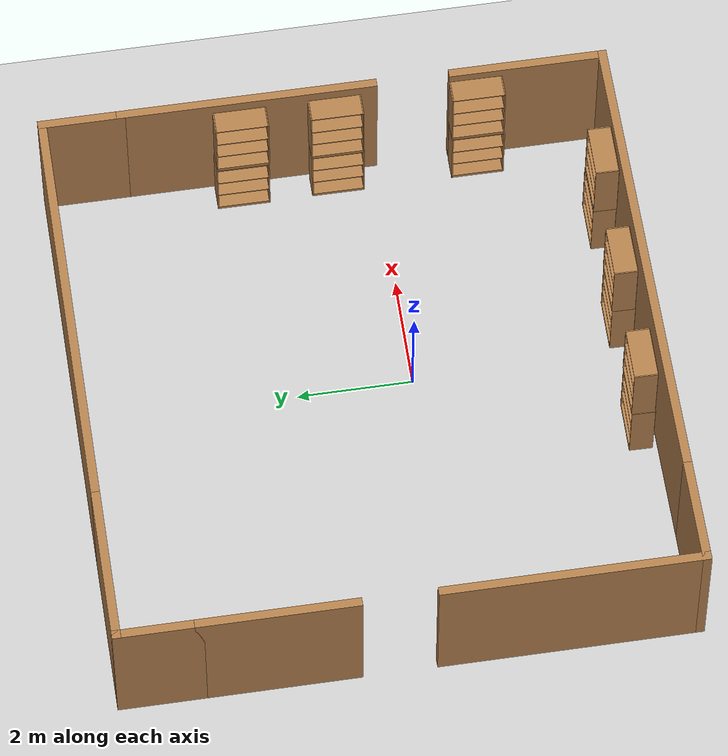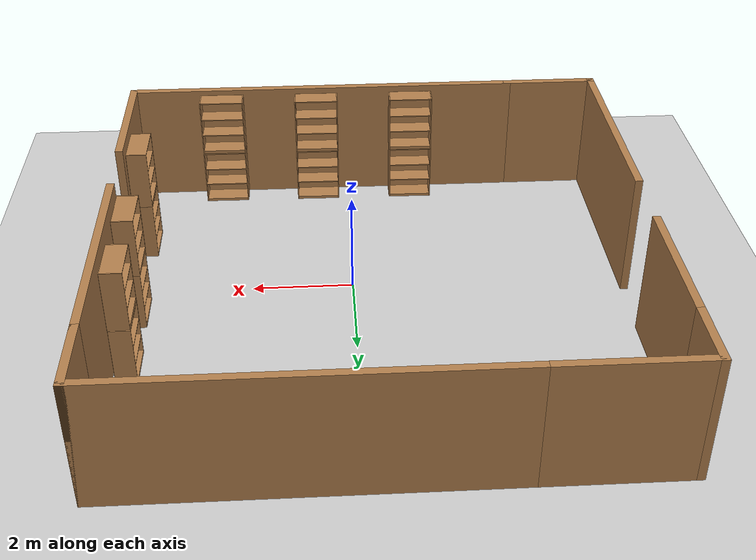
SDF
<sdf version="1.7">
 <world name="default">
  <model name="ground_plane">
   <static>1</static>
   <link name="link">
    <collision name="collision">
     <geometry><plane><normal>0 0 1</normal><size>100 100</size></plane></geometry>
     <surface><friction><ode><mu>100</mu><mu2>50</mu2></ode></friction></surface>
    </collision>
    <visual name="visual">
     <cast_shadows>0</cast_shadows>
     <geometry><plane><normal>0 0 1</normal><size>100 100</size></plane></geometry>
     <material>
      <script><uri>file://media/materials/scripts/gazebo.material</uri><name>Gazebo/Grey</name></script>
     </material>
    </visual>
   </link>
  </model>
  <model name="shopping_mart_box">
   <pose>-0.44063 0.87202 0 0 -0 0</pose>
   <link name="Wall_11">
    <collision name="Wall_11_Collision">
     <geometry><box><size>2 0.15 2.5</size></box></geometry>
     <pose>0 0 1.25 0 -0 0</pose>
    </collision>
    <visual name="Wall_11_Visual">
     <pose>0 0 1.25 0 -0 0</pose>
     <geometry><box><size>2 0.15 2.5</size></box></geometry>
     <material>
      <script><uri>file://media/materials/scripts/gazebo.material</uri><name>Gazebo/Wood</name></script>
      <ambient>1 1 1 1</ambient>
     </material>
    </visual>
    <pose>-4.05 -4.85 0 0 -0 3.14159</pose>
   </link>
   <link name="Wall_12">
    <collision name="Wall_12_Collision">
     <geometry><box><size>4.5 0.15 2.5</size></box></geometry>
     <pose>0 0 1.25 0 -0 0</pose>
    </collision>
    <visual name="Wall_12_Visual">
     <pose>0 0 1.25 0 -0 0</pose>
     <geometry><box><size>4.5 0.15 2.5</size></box></geometry>
     <material>
      <script><uri>file://media/materials/scripts/gazebo.material</uri><name>Gazebo/Wood</name></script>
      <ambient>1 1 1 1</ambient>
     </material>
    </visual>
    <pose>-4.975 -2.675 0 0 -0 1.5708</pose>
   </link>
   <link name="Wall_15">
    <collision name="Wall_15_Collision">
     <geometry><box><size>2.75 0.15 2.5</size></box></geometry>
     <pose>0 0 1.25 0 -0 0</pose>
    </collision>
    <visual name="Wall_15_Visual">
     <pose>0 0 1.25 0 -0 0</pose>
     <geometry><box><size>2.75 0.15 2.5</size></box></geometry>
     <material>
      <script><uri>file://media/materials/scripts/gazebo.material</uri><name>Gazebo/Wood</name></script>
      <ambient>1 1 1 1</ambient>
     </material>
    </visual>
    <pose>-4.975 2.2 0 0 0 -1.5708</pose>
   </link>
   <link name="Wall_17">
    <collision name="Wall_17_Collision">
     <geometry><box><size>1.5 0.15 2.5</size></box></geometry>
     <pose>0 0 1.25 0 -0 0</pose>
    </collision>
    <visual name="Wall_17_Visual">
     <pose>0 0 1.25 0 -0 0</pose>
     <geometry><box><size>1.5 0.15 2.5</size></box></geometry>
     <material>
      <script><uri>file://media/materials/scripts/gazebo.material</uri><name>Gazebo/Wood</name></script>
      <ambient>1 1 1 1</ambient>
     </material>
    </visual>
    <pose>-4.975 4.175 0 0 -0 1.5708</pose>
   </link>
   <link name="Wall_21">
    <collision name="Wall_21_Collision">
     <geometry><box><size>2.75 0.15 2.5</size></box></geometry>
     <pose>0 0 1.25 0 -0 0</pose>
    </collision>
    <visual name="Wall_21_Visual">
     <pose>0 0 1.25 0 -0 0</pose>
     <geometry><box><size>2.75 0.15 2.5</size></box></geometry>
     <material>
      <script><uri>file://media/materials/scripts/gazebo.material</uri><name>Gazebo/Wood</name></script>
      <ambient>1 1 1 1</ambient>
     </material>
    </visual>
    <pose>-3.675 4.85 0 0 -0 0</pose>
   </link>
   <link name="Wall_22">
    <collision name="Wall_22_Collision">
     <geometry><box><size>7.5 0.15 2.5</size></box></geometry>
     <pose>0 0 1.25 0 -0 0</pose>
    </collision>
    <visual name="Wall_22_Visual">
     <pose>0 0 1.25 0 -0 0</pose>
     <geometry><box><size>7.5 0.15 2.5</size></box></geometry>
     <material>
      <script><uri>file://media/materials/scripts/gazebo.material</uri><name>Gazebo/Wood</name></script>
      <ambient>1 1 1 1</ambient>
     </material>
    </visual>
    <pose>1.3 4.85 0 0 -0 0</pose>
   </link>
   <link name="Wall_23">
    <collision name="Wall_23_Collision">
     <geometry><box><size>1.5 0.15 2.5</size></box></geometry>
     <pose>0 0 1.25 0 -0 0</pose>
    </collision>
    <visual name="Wall_23_Visual">
     <pose>0 0 1.25 0 -0 0</pose>
     <geometry><box><size>1.5 0.15 2.5</size></box></geometry>
     <material>
      <script><uri>file://media/materials/scripts/gazebo.material</uri><name>Gazebo/Wood</name></script>
      <ambient>1 1 1 1</ambient>
     </material>
    </visual>
    <pose>4.975 4.175 0 0 0 -1.5708</pose>
   </link>
   <link name="Wall_29">
    <collision name="Wall_29_Collision">
     <geometry><box><size>4.5 0.15 2.5</size></box></geometry>
     <pose>0 0 1.25 0 -0 0</pose>
    </collision>
    <visual name="Wall_29_Visual">
     <pose>0 0 1.25 0 -0 0</pose>
     <geometry><box><size>4.5 0.15 2.5</size></box></geometry>
     <material>
      <script><uri>file://media/materials/scripts/gazebo.material</uri><name>Gazebo/Wood</name></script>
      <ambient>1 1 1 1</ambient>
     </material>
    </visual>
    <pose>4.975 1.325 0 0 0 -1.5708</pose>
   </link>
   <link name="Wall_31">
    <collision name="Wall_31_Collision">
     <geometry><box><size>2.75 0.15 2.5</size></box></geometry>
     <pose>0 0 1.25 0 -0 0</pose>
    </collision>
    <visual name="Wall_31_Visual">
     <pose>0 0 1.25 0 -0 0</pose>
     <geometry><box><size>2.75 0.15 2.5</size></box></geometry>
     <material>
      <script><uri>file://media/materials/scripts/gazebo.material</uri><name>Gazebo/Wood</name></script>
      <ambient>1 1 1 1</ambient>
     </material>
    </visual>
    <pose>4.975 -3.55 0 0 -0 1.5708</pose>
   </link>
   <link name="Wall_6">
    <collision name="Wall_6_Collision">
     <geometry><box><size>8.25 0.15 2.5</size></box></geometry>
     <pose>0 0 1.25 0 -0 0</pose>
    </collision>
    <visual name="Wall_6_Visual">
     <pose>0 0 1.25 0 -0 0</pose>
     <geometry><box><size>8.25 0.15 2.5</size></box></geometry>
     <material>
      <script><uri>file://media/materials/scripts/gazebo.material</uri><name>Gazebo/Wood</name></script>
      <ambient>1 1 1 1</ambient>
     </material>
    </visual>
    <pose>0.925 -4.85 0 0 -0 0</pose>
   </link>
   <static>1</static>
  </model>
  <model name="bookshelf_4_clone_0">
   <static>1</static>
   <link name="link">
    <inertial><mass>1</mass></inertial>
    <collision name="back">
     <pose>0 0.005 0.6 0 -0 0</pose>
     <geometry><box><size>0.9 0.01 1.2</size></box></geometry>
    </collision>
    <visual name="visual1">
     <pose>0 0.005 0.6 0 -0 0</pose>
     <geometry><box><size>0.9 0.01 1.2</size></box></geometry>
     <material>
      <script><uri>file://media/materials/scripts/gazebo.material</uri><name>Gazebo/Wood</name></script>
     </material>
    </visual>
    <collision name="left_side">
     <pose>0.45 -0.195 0.6 0 -0 0</pose>
     <geometry><box><size>0.02 0.4 1.2</size></box></geometry>
    </collision>
    <visual name="visual2">
     <pose>0.45 -0.195 0.6 0 -0 0</pose>
     <geometry><box><size>0.02 0.4 1.2</size></box></geometry>
     <material>
      <script><uri>file://media/materials/scripts/gazebo.material</uri><name>Gazebo/Wood</name></script>
     </material>
    </visual>
    <collision name="right_side">
     <pose>-0.45 -0.195 0.6 0 -0 0</pose>
     <geometry><box><size>0.02 0.4 1.2</size></box></geometry>
    </collision>
    <visual name="visual3">
     <pose>-0.45 -0.195 0.6 0 -0 0</pose>
     <geometry><box><size>0.02 0.4 1.2</size></box></geometry>
     <material>
      <script><uri>file://media/materials/scripts/gazebo.material</uri><name>Gazebo/Wood</name></script>
     </material>
    </visual>
    <collision name="bottom">
     <pose>0 -0.195 0.03 0 -0 0</pose>
     <geometry><box><size>0.88 0.4 0.06</size></box></geometry>
    </collision>
    <visual name="visual4">
     <pose>0 -0.195 0.03 0 -0 0</pose>
     <geometry><box><size>0.88 0.4 0.06</size></box></geometry>
     <material>
      <script><uri>file://media/materials/scripts/gazebo.material</uri><name>Gazebo/Wood</name></script>
     </material>
    </visual>
    <collision name="top">
     <pose>0 -0.195 1.19 0 -0 0</pose>
     <geometry><box><size>0.88 0.4 0.02</size></box></geometry>
    </collision>
    <visual name="visual5">
     <pose>0 -0.195 1.19 0 -0 0</pose>
     <geometry><box><size>0.88 0.4 0.02</size></box></geometry>
     <material>
      <script><uri>file://media/materials/scripts/gazebo.material</uri><name>Gazebo/Wood</name></script>
     </material>
    </visual>
    <collision name="low_shelf">
     <pose>0 -0.195 0.43 0 -0 0</pose>
     <geometry><box><size>0.88 0.4 0.02</size></box></geometry>
    </collision>
    <visual name="visual6">
     <pose>0 -0.195 0.43 0 -0 0</pose>
     <geometry><box><size>0.88 0.4 0.02</size></box></geometry>
     <material>
      <script><uri>file://media/materials/scripts/gazebo.material</uri><name>Gazebo/Wood</name></script>
     </material>
    </visual>
    <collision name="high_shelf">
     <pose>0 -0.195 0.8 0 -0 0</pose>
     <geometry><box><size>0.88 0.4 0.02</size></box></geometry>
    </collision>
    <visual name="visual7">
     <pose>0 -0.195 0.8 0 -0 0</pose>
     <geometry><box><size>0.88 0.4 0.02</size></box></geometry>
     <material>
      <script><uri>file://media/materials/scripts/gazebo.material</uri><name>Gazebo/Wood</name></script>
     </material>
    </visual>
   </link>
   <pose>4.37565 2.36025 0 0 0 -1.5727</pose>
  </model>
  <model name="bookshelf_4_clone_1">
   <static>1</static>
   <link name="link">
    <inertial><mass>1</mass></inertial>
    <collision name="back">
     <pose>0 0.005 0.6 0 -0 0</pose>
     <geometry><box><size>0.9 0.01 1.2</size></box></geometry>
    </collision>
    <visual name="visual1">
     <pose>0 0.005 0.6 0 -0 0</pose>
     <geometry><box><size>0.9 0.01 1.2</size></box></geometry>
     <material>
      <script><uri>file://media/materials/scripts/gazebo.material</uri><name>Gazebo/Wood</name></script>
     </material>
    </visual>
    <collision name="left_side">
     <pose>0.45 -0.195 0.6 0 -0 0</pose>
     <geometry><box><size>0.02 0.4 1.2</size></box></geometry>
    </collision>
    <visual name="visual2">
     <pose>0.45 -0.195 0.6 0 -0 0</pose>
     <geometry><box><size>0.02 0.4 1.2</size></box></geometry>
     <material>
      <script><uri>file://media/materials/scripts/gazebo.material</uri><name>Gazebo/Wood</name></script>
     </material>
    </visual>
    <collision name="right_side">
     <pose>-0.45 -0.195 0.6 0 -0 0</pose>
     <geometry><box><size>0.02 0.4 1.2</size></box></geometry>
    </collision>
    <visual name="visual3">
     <pose>-0.45 -0.195 0.6 0 -0 0</pose>
     <geometry><box><size>0.02 0.4 1.2</size></box></geometry>
     <material>
      <script><uri>file://media/materials/scripts/gazebo.material</uri><name>Gazebo/Wood</name></script>
     </material>
    </visual>
    <collision name="bottom">
     <pose>0 -0.195 0.03 0 -0 0</pose>
     <geometry><box><size>0.88 0.4 0.06</size></box></geometry>
    </collision>
    <visual name="visual4">
     <pose>0 -0.195 0.03 0 -0 0</pose>
     <geometry><box><size>0.88 0.4 0.06</size></box></geometry>
     <material>
      <script><uri>file://media/materials/scripts/gazebo.material</uri><name>Gazebo/Wood</name></script>
     </material>
    </visual>
    <collision name="top">
     <pose>0 -0.195 1.19 0 -0 0</pose>
     <geometry><box><size>0.88 0.4 0.02</size></box></geometry>
    </collision>
    <visual name="visual5">
     <pose>0 -0.195 1.19 0 -0 0</pose>
     <geometry><box><size>0.88 0.4 0.02</size></box></geometry>
     <material>
      <script><uri>file://media/materials/scripts/gazebo.material</uri><name>Gazebo/Wood</name></script>
     </material>
    </visual>
    <collision name="low_shelf">
     <pose>0 -0.195 0.43 0 -0 0</pose>
     <geometry><box><size>0.88 0.4 0.02</size></box></geometry>
    </collision>
    <visual name="visual6">
     <pose>0 -0.195 0.43 0 -0 0</pose>
     <geometry><box><size>0.88 0.4 0.02</size></box></geometry>
     <material>
      <script><uri>file://media/materials/scripts/gazebo.material</uri><name>Gazebo/Wood</name></script>
     </material>
    </visual>
    <collision name="high_shelf">
     <pose>0 -0.195 0.8 0 -0 0</pose>
     <geometry><box><size>0.88 0.4 0.02</size></box></geometry>
    </collision>
    <visual name="visual7">
     <pose>0 -0.195 0.8 0 -0 0</pose>
     <geometry><box><size>0.88 0.4 0.02</size></box></geometry>
     <material>
      <script><uri>file://media/materials/scripts/gazebo.material</uri><name>Gazebo/Wood</name></script>
     </material>
    </visual>
   </link>
   <pose>4.39312 0.69592 0 0 0 -1.5727</pose>
  </model>
  <model name="bookshelf_4_clone_1_clone">
   <static>1</static>
   <link name="link">
    <inertial><mass>1</mass></inertial>
    <collision name="back">
     <pose>0 0.005 0.6 0 -0 0</pose>
     <geometry><box><size>0.9 0.01 1.2</size></box></geometry>
    </collision>
    <visual name="visual1">
     <pose>0 0.005 0.6 0 -0 0</pose>
     <geometry><box><size>0.9 0.01 1.2</size></box></geometry>
     <material>
      <script><uri>file://media/materials/scripts/gazebo.material</uri><name>Gazebo/Wood</name></script>
     </material>
    </visual>
    <collision name="left_side">
     <pose>0.45 -0.195 0.6 0 -0 0</pose>
     <geometry><box><size>0.02 0.4 1.2</size></box></geometry>
    </collision>
    <visual name="visual2">
     <pose>0.45 -0.195 0.6 0 -0 0</pose>
     <geometry><box><size>0.02 0.4 1.2</size></box></geometry>
     <material>
      <script><uri>file://media/materials/scripts/gazebo.material</uri><name>Gazebo/Wood</name></script>
     </material>
    </visual>
    <collision name="right_side">
     <pose>-0.45 -0.195 0.6 0 -0 0</pose>
     <geometry><box><size>0.02 0.4 1.2</size></box></geometry>
    </collision>
    <visual name="visual3">
     <pose>-0.45 -0.195 0.6 0 -0 0</pose>
     <geometry><box><size>0.02 0.4 1.2</size></box></geometry>
     <material>
      <script><uri>file://media/materials/scripts/gazebo.material</uri><name>Gazebo/Wood</name></script>
     </material>
    </visual>
    <collision name="bottom">
     <pose>0 -0.195 0.03 0 -0 0</pose>
     <geometry><box><size>0.88 0.4 0.06</size></box></geometry>
    </collision>
    <visual name="visual4">
     <pose>0 -0.195 0.03 0 -0 0</pose>
     <geometry><box><size>0.88 0.4 0.06</size></box></geometry>
     <material>
      <script><uri>file://media/materials/scripts/gazebo.material</uri><name>Gazebo/Wood</name></script>
     </material>
    </visual>
    <collision name="top">
     <pose>0 -0.195 1.19 0 -0 0</pose>
     <geometry><box><size>0.88 0.4 0.02</size></box></geometry>
    </collision>
    <visual name="visual5">
     <pose>0 -0.195 1.19 0 -0 0</pose>
     <geometry><box><size>0.88 0.4 0.02</size></box></geometry>
     <material>
      <script><uri>file://media/materials/scripts/gazebo.material</uri><name>Gazebo/Wood</name></script>
     </material>
    </visual>
    <collision name="low_shelf">
     <pose>0 -0.195 0.43 0 -0 0</pose>
     <geometry><box><size>0.88 0.4 0.02</size></box></geometry>
    </collision>
    <visual name="visual6">
     <pose>0 -0.195 0.43 0 -0 0</pose>
     <geometry><box><size>0.88 0.4 0.02</size></box></geometry>
     <material>
      <script><uri>file://media/materials/scripts/gazebo.material</uri><name>Gazebo/Wood</name></script>
     </material>
    </visual>
    <collision name="high_shelf">
     <pose>0 -0.195 0.8 0 -0 0</pose>
     <geometry><box><size>0.88 0.4 0.02</size></box></geometry>
    </collision>
    <visual name="visual7">
     <pose>0 -0.195 0.8 0 -0 0</pose>
     <geometry><box><size>0.88 0.4 0.02</size></box></geometry>
     <material>
      <script><uri>file://media/materials/scripts/gazebo.material</uri><name>Gazebo/Wood</name></script>
     </material>
    </visual>
   </link>
   <pose>4.3806 2.34957 1.20741 0 0 -1.5727</pose>
  </model>
  <model name="bookshelf_4_clone_1_clone_clone_0">
   <static>1</static>
   <link name="link">
    <inertial><mass>1</mass></inertial>
    <collision name="back">
     <pose>0 0.005 0.6 0 -0 0</pose>
     <geometry><box><size>0.9 0.01 1.2</size></box></geometry>
    </collision>
    <visual name="visual1">
     <pose>0 0.005 0.6 0 -0 0</pose>
     <geometry><box><size>0.9 0.01 1.2</size></box></geometry>
     <material>
      <script><uri>file://media/materials/scripts/gazebo.material</uri><name>Gazebo/Wood</name></script>
     </material>
    </visual>
    <collision name="left_side">
     <pose>0.45 -0.195 0.6 0 -0 0</pose>
     <geometry><box><size>0.02 0.4 1.2</size></box></geometry>
    </collision>
    <visual name="visual2">
     <pose>0.45 -0.195 0.6 0 -0 0</pose>
     <geometry><box><size>0.02 0.4 1.2</size></box></geometry>
     <material>
      <script><uri>file://media/materials/scripts/gazebo.material</uri><name>Gazebo/Wood</name></script>
     </material>
    </visual>
    <collision name="right_side">
     <pose>-0.45 -0.195 0.6 0 -0 0</pose>
     <geometry><box><size>0.02 0.4 1.2</size></box></geometry>
    </collision>
    <visual name="visual3">
     <pose>-0.45 -0.195 0.6 0 -0 0</pose>
     <geometry><box><size>0.02 0.4 1.2</size></box></geometry>
     <material>
      <script><uri>file://media/materials/scripts/gazebo.material</uri><name>Gazebo/Wood</name></script>
     </material>
    </visual>
    <collision name="bottom">
     <pose>0 -0.195 0.03 0 -0 0</pose>
     <geometry><box><size>0.88 0.4 0.06</size></box></geometry>
    </collision>
    <visual name="visual4">
     <pose>0 -0.195 0.03 0 -0 0</pose>
     <geometry><box><size>0.88 0.4 0.06</size></box></geometry>
     <material>
      <script><uri>file://media/materials/scripts/gazebo.material</uri><name>Gazebo/Wood</name></script>
     </material>
    </visual>
    <collision name="top">
     <pose>0 -0.195 1.19 0 -0 0</pose>
     <geometry><box><size>0.88 0.4 0.02</size></box></geometry>
    </collision>
    <visual name="visual5">
     <pose>0 -0.195 1.19 0 -0 0</pose>
     <geometry><box><size>0.88 0.4 0.02</size></box></geometry>
     <material>
      <script><uri>file://media/materials/scripts/gazebo.material</uri><name>Gazebo/Wood</name></script>
     </material>
    </visual>
    <collision name="low_shelf">
     <pose>0 -0.195 0.43 0 -0 0</pose>
     <geometry><box><size>0.88 0.4 0.02</size></box></geometry>
    </collision>
    <visual name="visual6">
     <pose>0 -0.195 0.43 0 -0 0</pose>
     <geometry><box><size>0.88 0.4 0.02</size></box></geometry>
     <material>
      <script><uri>file://media/materials/scripts/gazebo.material</uri><name>Gazebo/Wood</name></script>
     </material>
    </visual>
    <collision name="high_shelf">
     <pose>0 -0.195 0.8 0 -0 0</pose>
     <geometry><box><size>0.88 0.4 0.02</size></box></geometry>
    </collision>
    <visual name="visual7">
     <pose>0 -0.195 0.8 0 -0 0</pose>
     <geometry><box><size>0.88 0.4 0.02</size></box></geometry>
     <material>
      <script><uri>file://media/materials/scripts/gazebo.material</uri><name>Gazebo/Wood</name></script>
     </material>
    </visual>
   </link>
   <pose>4.38615 0.705306 1.20741 0 0 -1.5727</pose>
  </model>
  <model name="bookshelf_5">
   <static>1</static>
   <link name="link">
    <inertial><mass>1</mass></inertial>
    <collision name="back">
     <pose>0 0.005 0.6 0 -0 0</pose>
     <geometry><box><size>0.9 0.01 1.2</size></box></geometry>
    </collision>
    <visual name="visual1">
     <pose>0 0.005 0.6 0 -0 0</pose>
     <geometry><box><size>0.9 0.01 1.2</size></box></geometry>
     <material>
      <script><uri>file://media/materials/scripts/gazebo.material</uri><name>Gazebo/Wood</name></script>
     </material>
    </visual>
    <collision name="left_side">
     <pose>0.45 -0.195 0.6 0 -0 0</pose>
     <geometry><box><size>0.02 0.4 1.2</size></box></geometry>
    </collision>
    <visual name="visual2">
     <pose>0.45 -0.195 0.6 0 -0 0</pose>
     <geometry><box><size>0.02 0.4 1.2</size></box></geometry>
     <material>
      <script><uri>file://media/materials/scripts/gazebo.material</uri><name>Gazebo/Wood</name></script>
     </material>
    </visual>
    <collision name="right_side">
     <pose>-0.45 -0.195 0.6 0 -0 0</pose>
     <geometry><box><size>0.02 0.4 1.2</size></box></geometry>
    </collision>
    <visual name="visual3">
     <pose>-0.45 -0.195 0.6 0 -0 0</pose>
     <geometry><box><size>0.02 0.4 1.2</size></box></geometry>
     <material>
      <script><uri>file://media/materials/scripts/gazebo.material</uri><name>Gazebo/Wood</name></script>
     </material>
    </visual>
    <collision name="bottom">
     <pose>0 -0.195 0.03 0 -0 0</pose>
     <geometry><box><size>0.88 0.4 0.06</size></box></geometry>
    </collision>
    <visual name="visual4">
     <pose>0 -0.195 0.03 0 -0 0</pose>
     <geometry><box><size>0.88 0.4 0.06</size></box></geometry>
     <material>
      <script><uri>file://media/materials/scripts/gazebo.material</uri><name>Gazebo/Wood</name></script>
     </material>
    </visual>
    <collision name="top">
     <pose>0 -0.195 1.19 0 -0 0</pose>
     <geometry><box><size>0.88 0.4 0.02</size></box></geometry>
    </collision>
    <visual name="visual5">
     <pose>0 -0.195 1.19 0 -0 0</pose>
     <geometry><box><size>0.88 0.4 0.02</size></box></geometry>
     <material>
      <script><uri>file://media/materials/scripts/gazebo.material</uri><name>Gazebo/Wood</name></script>
     </material>
    </visual>
    <collision name="low_shelf">
     <pose>0 -0.195 0.43 0 -0 0</pose>
     <geometry><box><size>0.88 0.4 0.02</size></box></geometry>
    </collision>
    <visual name="visual6">
     <pose>0 -0.195 0.43 0 -0 0</pose>
     <geometry><box><size>0.88 0.4 0.02</size></box></geometry>
     <material>
      <script><uri>file://media/materials/scripts/gazebo.material</uri><name>Gazebo/Wood</name></script>
     </material>
    </visual>
    <collision name="high_shelf">
     <pose>0 -0.195 0.8 0 -0 0</pose>
     <geometry><box><size>0.88 0.4 0.02</size></box></geometry>
    </collision>
    <visual name="visual7">
     <pose>0 -0.195 0.8 0 -0 0</pose>
     <geometry><box><size>0.88 0.4 0.02</size></box></geometry>
     <material>
      <script><uri>file://media/materials/scripts/gazebo.material</uri><name>Gazebo/Wood</name></script>
     </material>
    </visual>
   </link>
   <pose>2.65151 -3.85953 0 0 -0 3.12955</pose>
  </model>
  <model name="bookshelf_5_clone_0">
   <static>1</static>
   <link name="link">
    <inertial><mass>1</mass></inertial>
    <collision name="back">
     <pose>0 0.005 0.6 0 -0 0</pose>
     <geometry><box><size>0.9 0.01 1.2</size></box></geometry>
    </collision>
    <visual name="visual1">
     <pose>0 0.005 0.6 0 -0 0</pose>
     <geometry><box><size>0.9 0.01 1.2</size></box></geometry>
     <material>
      <script><uri>file://media/materials/scripts/gazebo.material</uri><name>Gazebo/Wood</name></script>
     </material>
    </visual>
    <collision name="left_side">
     <pose>0.45 -0.195 0.6 0 -0 0</pose>
     <geometry><box><size>0.02 0.4 1.2</size></box></geometry>
    </collision>
    <visual name="visual2">
     <pose>0.45 -0.195 0.6 0 -0 0</pose>
     <geometry><box><size>0.02 0.4 1.2</size></box></geometry>
     <material>
      <script><uri>file://media/materials/scripts/gazebo.material</uri><name>Gazebo/Wood</name></script>
     </material>
    </visual>
    <collision name="right_side">
     <pose>-0.45 -0.195 0.6 0 -0 0</pose>
     <geometry><box><size>0.02 0.4 1.2</size></box></geometry>
    </collision>
    <visual name="visual3">
     <pose>-0.45 -0.195 0.6 0 -0 0</pose>
     <geometry><box><size>0.02 0.4 1.2</size></box></geometry>
     <material>
      <script><uri>file://media/materials/scripts/gazebo.material</uri><name>Gazebo/Wood</name></script>
     </material>
    </visual>
    <collision name="bottom">
     <pose>0 -0.195 0.03 0 -0 0</pose>
     <geometry><box><size>0.88 0.4 0.06</size></box></geometry>
    </collision>
    <visual name="visual4">
     <pose>0 -0.195 0.03 0 -0 0</pose>
     <geometry><box><size>0.88 0.4 0.06</size></box></geometry>
     <material>
      <script><uri>file://media/materials/scripts/gazebo.material</uri><name>Gazebo/Wood</name></script>
     </material>
    </visual>
    <collision name="top">
     <pose>0 -0.195 1.19 0 -0 0</pose>
     <geometry><box><size>0.88 0.4 0.02</size></box></geometry>
    </collision>
    <visual name="visual5">
     <pose>0 -0.195 1.19 0 -0 0</pose>
     <geometry><box><size>0.88 0.4 0.02</size></box></geometry>
     <material>
      <script><uri>file://media/materials/scripts/gazebo.material</uri><name>Gazebo/Wood</name></script>
     </material>
    </visual>
    <collision name="low_shelf">
     <pose>0 -0.195 0.43 0 -0 0</pose>
     <geometry><box><size>0.88 0.4 0.02</size></box></geometry>
    </collision>
    <visual name="visual6">
     <pose>0 -0.195 0.43 0 -0 0</pose>
     <geometry><box><size>0.88 0.4 0.02</size></box></geometry>
     <material>
      <script><uri>file://media/materials/scripts/gazebo.material</uri><name>Gazebo/Wood</name></script>
     </material>
    </visual>
    <collision name="high_shelf">
     <pose>0 -0.195 0.8 0 -0 0</pose>
     <geometry><box><size>0.88 0.4 0.02</size></box></geometry>
    </collision>
    <visual name="visual7">
     <pose>0 -0.195 0.8 0 -0 0</pose>
     <geometry><box><size>0.88 0.4 0.02</size></box></geometry>
     <material>
      <script><uri>file://media/materials/scripts/gazebo.material</uri><name>Gazebo/Wood</name></script>
     </material>
    </visual>
   </link>
   <pose>0.624398 -3.83719 0 0 -0 3.12955</pose>
  </model>
  <model name="bookshelf_5_clone_2">
   <static>1</static>
   <link name="link">
    <inertial><mass>1</mass></inertial>
    <collision name="back">
     <pose>0 0.005 0.6 0 -0 0</pose>
     <geometry><box><size>0.9 0.01 1.2</size></box></geometry>
    </collision>
    <visual name="visual1">
     <pose>0 0.005 0.6 0 -0 0</pose>
     <geometry><box><size>0.9 0.01 1.2</size></box></geometry>
     <material>
      <script><uri>file://media/materials/scripts/gazebo.material</uri><name>Gazebo/Wood</name></script>
     </material>
    </visual>
    <collision name="left_side">
     <pose>0.45 -0.195 0.6 0 -0 0</pose>
     <geometry><box><size>0.02 0.4 1.2</size></box></geometry>
    </collision>
    <visual name="visual2">
     <pose>0.45 -0.195 0.6 0 -0 0</pose>
     <geometry><box><size>0.02 0.4 1.2</size></box></geometry>
     <material>
      <script><uri>file://media/materials/scripts/gazebo.material</uri><name>Gazebo/Wood</name></script>
     </material>
    </visual>
    <collision name="right_side">
     <pose>-0.45 -0.195 0.6 0 -0 0</pose>
     <geometry><box><size>0.02 0.4 1.2</size></box></geometry>
    </collision>
    <visual name="visual3">
     <pose>-0.45 -0.195 0.6 0 -0 0</pose>
     <geometry><box><size>0.02 0.4 1.2</size></box></geometry>
     <material>
      <script><uri>file://media/materials/scripts/gazebo.material</uri><name>Gazebo/Wood</name></script>
     </material>
    </visual>
    <collision name="bottom">
     <pose>0 -0.195 0.03 0 -0 0</pose>
     <geometry><box><size>0.88 0.4 0.06</size></box></geometry>
    </collision>
    <visual name="visual4">
     <pose>0 -0.195 0.03 0 -0 0</pose>
     <geometry><box><size>0.88 0.4 0.06</size></box></geometry>
     <material>
      <script><uri>file://media/materials/scripts/gazebo.material</uri><name>Gazebo/Wood</name></script>
     </material>
    </visual>
    <collision name="top">
     <pose>0 -0.195 1.19 0 -0 0</pose>
     <geometry><box><size>0.88 0.4 0.02</size></box></geometry>
    </collision>
    <visual name="visual5">
     <pose>0 -0.195 1.19 0 -0 0</pose>
     <geometry><box><size>0.88 0.4 0.02</size></box></geometry>
     <material>
      <script><uri>file://media/materials/scripts/gazebo.material</uri><name>Gazebo/Wood</name></script>
     </material>
    </visual>
    <collision name="low_shelf">
     <pose>0 -0.195 0.43 0 -0 0</pose>
     <geometry><box><size>0.88 0.4 0.02</size></box></geometry>
    </collision>
    <visual name="visual6">
     <pose>0 -0.195 0.43 0 -0 0</pose>
     <geometry><box><size>0.88 0.4 0.02</size></box></geometry>
     <material>
      <script><uri>file://media/materials/scripts/gazebo.material</uri><name>Gazebo/Wood</name></script>
     </material>
    </visual>
    <collision name="high_shelf">
     <pose>0 -0.195 0.8 0 -0 0</pose>
     <geometry><box><size>0.88 0.4 0.02</size></box></geometry>
    </collision>
    <visual name="visual7">
     <pose>0 -0.195 0.8 0 -0 0</pose>
     <geometry><box><size>0.88 0.4 0.02</size></box></geometry>
     <material>
      <script><uri>file://media/materials/scripts/gazebo.material</uri><name>Gazebo/Wood</name></script>
     </material>
    </visual>
   </link>
   <pose>-1.42311 -3.81825 0 0 -0 3.12955</pose>
  </model>
  <model name="bookshelf_5_clone">
   <static>1</static>
   <link name="link">
    <inertial><mass>1</mass></inertial>
    <collision name="back">
     <pose>0 0.005 0.6 0 -0 0</pose>
     <geometry><box><size>0.9 0.01 1.2</size></box></geometry>
    </collision>
    <visual name="visual1">
     <pose>0 0.005 0.6 0 -0 0</pose>
     <geometry><box><size>0.9 0.01 1.2</size></box></geometry>
     <material>
      <script><uri>file://media/materials/scripts/gazebo.material</uri><name>Gazebo/Wood</name></script>
     </material>
    </visual>
    <collision name="left_side">
     <pose>0.45 -0.195 0.6 0 -0 0</pose>
     <geometry><box><size>0.02 0.4 1.2</size></box></geometry>
    </collision>
    <visual name="visual2">
     <pose>0.45 -0.195 0.6 0 -0 0</pose>
     <geometry><box><size>0.02 0.4 1.2</size></box></geometry>
     <material>
      <script><uri>file://media/materials/scripts/gazebo.material</uri><name>Gazebo/Wood</name></script>
     </material>
    </visual>
    <collision name="right_side">
     <pose>-0.45 -0.195 0.6 0 -0 0</pose>
     <geometry><box><size>0.02 0.4 1.2</size></box></geometry>
    </collision>
    <visual name="visual3">
     <pose>-0.45 -0.195 0.6 0 -0 0</pose>
     <geometry><box><size>0.02 0.4 1.2</size></box></geometry>
     <material>
      <script><uri>file://media/materials/scripts/gazebo.material</uri><name>Gazebo/Wood</name></script>
     </material>
    </visual>
    <collision name="bottom">
     <pose>0 -0.195 0.03 0 -0 0</pose>
     <geometry><box><size>0.88 0.4 0.06</size></box></geometry>
    </collision>
    <visual name="visual4">
     <pose>0 -0.195 0.03 0 -0 0</pose>
     <geometry><box><size>0.88 0.4 0.06</size></box></geometry>
     <material>
      <script><uri>file://media/materials/scripts/gazebo.material</uri><name>Gazebo/Wood</name></script>
     </material>
    </visual>
    <collision name="top">
     <pose>0 -0.195 1.19 0 -0 0</pose>
     <geometry><box><size>0.88 0.4 0.02</size></box></geometry>
    </collision>
    <visual name="visual5">
     <pose>0 -0.195 1.19 0 -0 0</pose>
     <geometry><box><size>0.88 0.4 0.02</size></box></geometry>
     <material>
      <script><uri>file://media/materials/scripts/gazebo.material</uri><name>Gazebo/Wood</name></script>
     </material>
    </visual>
    <collision name="low_shelf">
     <pose>0 -0.195 0.43 0 -0 0</pose>
     <geometry><box><size>0.88 0.4 0.02</size></box></geometry>
    </collision>
    <visual name="visual6">
     <pose>0 -0.195 0.43 0 -0 0</pose>
     <geometry><box><size>0.88 0.4 0.02</size></box></geometry>
     <material>
      <script><uri>file://media/materials/scripts/gazebo.material</uri><name>Gazebo/Wood</name></script>
     </material>
    </visual>
    <collision name="high_shelf">
     <pose>0 -0.195 0.8 0 -0 0</pose>
     <geometry><box><size>0.88 0.4 0.02</size></box></geometry>
    </collision>
    <visual name="visual7">
     <pose>0 -0.195 0.8 0 -0 0</pose>
     <geometry><box><size>0.88 0.4 0.02</size></box></geometry>
     <material>
      <script><uri>file://media/materials/scripts/gazebo.material</uri><name>Gazebo/Wood</name></script>
     </material>
    </visual>
   </link>
   <pose>2.64795 -3.86432 1.21139 0 -0 3.12955</pose>
  </model>
  <model name="bookshelf_5_clone_clone">
   <static>1</static>
   <link name="link">
    <inertial><mass>1</mass></inertial>
    <collision name="back">
     <pose>0 0.005 0.6 0 -0 0</pose>
     <geometry><box><size>0.9 0.01 1.2</size></box></geometry>
    </collision>
    <visual name="visual1">
     <pose>0 0.005 0.6 0 -0 0</pose>
     <geometry><box><size>0.9 0.01 1.2</size></box></geometry>
     <material>
      <script><uri>file://media/materials/scripts/gazebo.material</uri><name>Gazebo/Wood</name></script>
     </material>
    </visual>
    <collision name="left_side">
     <pose>0.45 -0.195 0.6 0 -0 0</pose>
     <geometry><box><size>0.02 0.4 1.2</size></box></geometry>
    </collision>
    <visual name="visual2">
     <pose>0.45 -0.195 0.6 0 -0 0</pose>
     <geometry><box><size>0.02 0.4 1.2</size></box></geometry>
     <material>
      <script><uri>file://media/materials/scripts/gazebo.material</uri><name>Gazebo/Wood</name></script>
     </material>
    </visual>
    <collision name="right_side">
     <pose>-0.45 -0.195 0.6 0 -0 0</pose>
     <geometry><box><size>0.02 0.4 1.2</size></box></geometry>
    </collision>
    <visual name="visual3">
     <pose>-0.45 -0.195 0.6 0 -0 0</pose>
     <geometry><box><size>0.02 0.4 1.2</size></box></geometry>
     <material>
      <script><uri>file://media/materials/scripts/gazebo.material</uri><name>Gazebo/Wood</name></script>
     </material>
    </visual>
    <collision name="bottom">
     <pose>0 -0.195 0.03 0 -0 0</pose>
     <geometry><box><size>0.88 0.4 0.06</size></box></geometry>
    </collision>
    <visual name="visual4">
     <pose>0 -0.195 0.03 0 -0 0</pose>
     <geometry><box><size>0.88 0.4 0.06</size></box></geometry>
     <material>
      <script><uri>file://media/materials/scripts/gazebo.material</uri><name>Gazebo/Wood</name></script>
     </material>
    </visual>
    <collision name="top">
     <pose>0 -0.195 1.19 0 -0 0</pose>
     <geometry><box><size>0.88 0.4 0.02</size></box></geometry>
    </collision>
    <visual name="visual5">
     <pose>0 -0.195 1.19 0 -0 0</pose>
     <geometry><box><size>0.88 0.4 0.02</size></box></geometry>
     <material>
      <script><uri>file://media/materials/scripts/gazebo.material</uri><name>Gazebo/Wood</name></script>
     </material>
    </visual>
    <collision name="low_shelf">
     <pose>0 -0.195 0.43 0 -0 0</pose>
     <geometry><box><size>0.88 0.4 0.02</size></box></geometry>
    </collision>
    <visual name="visual6">
     <pose>0 -0.195 0.43 0 -0 0</pose>
     <geometry><box><size>0.88 0.4 0.02</size></box></geometry>
     <material>
      <script><uri>file://media/materials/scripts/gazebo.material</uri><name>Gazebo/Wood</name></script>
     </material>
    </visual>
    <collision name="high_shelf">
     <pose>0 -0.195 0.8 0 -0 0</pose>
     <geometry><box><size>0.88 0.4 0.02</size></box></geometry>
    </collision>
    <visual name="visual7">
     <pose>0 -0.195 0.8 0 -0 0</pose>
     <geometry><box><size>0.88 0.4 0.02</size></box></geometry>
     <material>
      <script><uri>file://media/materials/scripts/gazebo.material</uri><name>Gazebo/Wood</name></script>
     </material>
    </visual>
   </link>
   <pose>0.620317 -3.82873 1.21139 0 -0 3.12955</pose>
  </model>
  <model name="bookshelf_5_clone_clone_0">
   <static>1</static>
   <link name="link">
    <inertial><mass>1</mass></inertial>
    <collision name="back">
     <pose>0 0.005 0.6 0 -0 0</pose>
     <geometry><box><size>0.9 0.01 1.2</size></box></geometry>
    </collision>
    <visual name="visual1">
     <pose>0 0.005 0.6 0 -0 0</pose>
     <geometry><box><size>0.9 0.01 1.2</size></box></geometry>
     <material>
      <script><uri>file://media/materials/scripts/gazebo.material</uri><name>Gazebo/Wood</name></script>
     </material>
    </visual>
    <collision name="left_side">
     <pose>0.45 -0.195 0.6 0 -0 0</pose>
     <geometry><box><size>0.02 0.4 1.2</size></box></geometry>
    </collision>
    <visual name="visual2">
     <pose>0.45 -0.195 0.6 0 -0 0</pose>
     <geometry><box><size>0.02 0.4 1.2</size></box></geometry>
     <material>
      <script><uri>file://media/materials/scripts/gazebo.material</uri><name>Gazebo/Wood</name></script>
     </material>
    </visual>
    <collision name="right_side">
     <pose>-0.45 -0.195 0.6 0 -0 0</pose>
     <geometry><box><size>0.02 0.4 1.2</size></box></geometry>
    </collision>
    <visual name="visual3">
     <pose>-0.45 -0.195 0.6 0 -0 0</pose>
     <geometry><box><size>0.02 0.4 1.2</size></box></geometry>
     <material>
      <script><uri>file://media/materials/scripts/gazebo.material</uri><name>Gazebo/Wood</name></script>
     </material>
    </visual>
    <collision name="bottom">
     <pose>0 -0.195 0.03 0 -0 0</pose>
     <geometry><box><size>0.88 0.4 0.06</size></box></geometry>
    </collision>
    <visual name="visual4">
     <pose>0 -0.195 0.03 0 -0 0</pose>
     <geometry><box><size>0.88 0.4 0.06</size></box></geometry>
     <material>
      <script><uri>file://media/materials/scripts/gazebo.material</uri><name>Gazebo/Wood</name></script>
     </material>
    </visual>
    <collision name="top">
     <pose>0 -0.195 1.19 0 -0 0</pose>
     <geometry><box><size>0.88 0.4 0.02</size></box></geometry>
    </collision>
    <visual name="visual5">
     <pose>0 -0.195 1.19 0 -0 0</pose>
     <geometry><box><size>0.88 0.4 0.02</size></box></geometry>
     <material>
      <script><uri>file://media/materials/scripts/gazebo.material</uri><name>Gazebo/Wood</name></script>
     </material>
    </visual>
    <collision name="low_shelf">
     <pose>0 -0.195 0.43 0 -0 0</pose>
     <geometry><box><size>0.88 0.4 0.02</size></box></geometry>
    </collision>
    <visual name="visual6">
     <pose>0 -0.195 0.43 0 -0 0</pose>
     <geometry><box><size>0.88 0.4 0.02</size></box></geometry>
     <material>
      <script><uri>file://media/materials/scripts/gazebo.material</uri><name>Gazebo/Wood</name></script>
     </material>
    </visual>
    <collision name="high_shelf">
     <pose>0 -0.195 0.8 0 -0 0</pose>
     <geometry><box><size>0.88 0.4 0.02</size></box></geometry>
    </collision>
    <visual name="visual7">
     <pose>0 -0.195 0.8 0 -0 0</pose>
     <geometry><box><size>0.88 0.4 0.02</size></box></geometry>
     <material>
      <script><uri>file://media/materials/scripts/gazebo.material</uri><name>Gazebo/Wood</name></script>
     </material>
    </visual>
   </link>
   <pose>-1.41694 -3.81004 1.21139 0 -0 3.12955</pose>
  </model>
  <model name="bookshelf_4_clone_clone">
   <static>1</static>
   <link name="link">
    <inertial><mass>1</mass></inertial>
    <collision name="back">
     <pose>0 0.005 0.6 0 -0 0</pose>
     <geometry><box><size>0.9 0.01 1.2</size></box></geometry>
    </collision>
    <visual name="visual1">
     <pose>0 0.005 0.6 0 -0 0</pose>
     <geometry><box><size>0.9 0.01 1.2</size></box></geometry>
     <material>
      <script><uri>file://media/materials/scripts/gazebo.material</uri><name>Gazebo/Wood</name></script>
     </material>
    </visual>
    <collision name="left_side">
     <pose>0.45 -0.195 0.6 0 -0 0</pose>
     <geometry><box><size>0.02 0.4 1.2</size></box></geometry>
    </collision>
    <visual name="visual2">
     <pose>0.45 -0.195 0.6 0 -0 0</pose>
     <geometry><box><size>0.02 0.4 1.2</size></box></geometry>
     <material>
      <script><uri>file://media/materials/scripts/gazebo.material</uri><name>Gazebo/Wood</name></script>
     </material>
    </visual>
    <collision name="right_side">
     <pose>-0.45 -0.195 0.6 0 -0 0</pose>
     <geometry><box><size>0.02 0.4 1.2</size></box></geometry>
    </collision>
    <visual name="visual3">
     <pose>-0.45 -0.195 0.6 0 -0 0</pose>
     <geometry><box><size>0.02 0.4 1.2</size></box></geometry>
     <material>
      <script><uri>file://media/materials/scripts/gazebo.material</uri><name>Gazebo/Wood</name></script>
     </material>
    </visual>
    <collision name="bottom">
     <pose>0 -0.195 0.03 0 -0 0</pose>
     <geometry><box><size>0.88 0.4 0.06</size></box></geometry>
    </collision>
    <visual name="visual4">
     <pose>0 -0.195 0.03 0 -0 0</pose>
     <geometry><box><size>0.88 0.4 0.06</size></box></geometry>
     <material>
      <script><uri>file://media/materials/scripts/gazebo.material</uri><name>Gazebo/Wood</name></script>
     </material>
    </visual>
    <collision name="top">
     <pose>0 -0.195 1.19 0 -0 0</pose>
     <geometry><box><size>0.88 0.4 0.02</size></box></geometry>
    </collision>
    <visual name="visual5">
     <pose>0 -0.195 1.19 0 -0 0</pose>
     <geometry><box><size>0.88 0.4 0.02</size></box></geometry>
     <material>
      <script><uri>file://media/materials/scripts/gazebo.material</uri><name>Gazebo/Wood</name></script>
     </material>
    </visual>
    <collision name="low_shelf">
     <pose>0 -0.195 0.43 0 -0 0</pose>
     <geometry><box><size>0.88 0.4 0.02</size></box></geometry>
    </collision>
    <visual name="visual6">
     <pose>0 -0.195 0.43 0 -0 0</pose>
     <geometry><box><size>0.88 0.4 0.02</size></box></geometry>
     <material>
      <script><uri>file://media/materials/scripts/gazebo.material</uri><name>Gazebo/Wood</name></script>
     </material>
    </visual>
    <collision name="high_shelf">
     <pose>0 -0.195 0.8 0 -0 0</pose>
     <geometry><box><size>0.88 0.4 0.02</size></box></geometry>
    </collision>
    <visual name="visual7">
     <pose>0 -0.195 0.8 0 -0 0</pose>
     <geometry><box><size>0.88 0.4 0.02</size></box></geometry>
     <material>
      <script><uri>file://media/materials/scripts/gazebo.material</uri><name>Gazebo/Wood</name></script>
     </material>
    </visual>
   </link>
   <pose>4.40573 -1.76165 0 0 0 -1.5727</pose>
  </model>
  <model name="bookshelf_4_clone_1_clone_clone_clone">
   <static>1</static>
   <link name="link">
    <inertial><mass>1</mass></inertial>
    <collision name="back">
     <pose>0 0.005 0.6 0 -0 0</pose>
     <geometry><box><size>0.9 0.01 1.2</size></box></geometry>
    </collision>
    <visual name="visual1">
     <pose>0 0.005 0.6 0 -0 0</pose>
     <geometry><box><size>0.9 0.01 1.2</size></box></geometry>
     <material>
      <script><uri>file://media/materials/scripts/gazebo.material</uri><name>Gazebo/Wood</name></script>
     </material>
    </visual>
    <collision name="left_side">
     <pose>0.45 -0.195 0.6 0 -0 0</pose>
     <geometry><box><size>0.02 0.4 1.2</size></box></geometry>
    </collision>
    <visual name="visual2">
     <pose>0.45 -0.195 0.6 0 -0 0</pose>
     <geometry><box><size>0.02 0.4 1.2</size></box></geometry>
     <material>
      <script><uri>file://media/materials/scripts/gazebo.material</uri><name>Gazebo/Wood</name></script>
     </material>
    </visual>
    <collision name="right_side">
     <pose>-0.45 -0.195 0.6 0 -0 0</pose>
     <geometry><box><size>0.02 0.4 1.2</size></box></geometry>
    </collision>
    <visual name="visual3">
     <pose>-0.45 -0.195 0.6 0 -0 0</pose>
     <geometry><box><size>0.02 0.4 1.2</size></box></geometry>
     <material>
      <script><uri>file://media/materials/scripts/gazebo.material</uri><name>Gazebo/Wood</name></script>
     </material>
    </visual>
    <collision name="bottom">
     <pose>0 -0.195 0.03 0 -0 0</pose>
     <geometry><box><size>0.88 0.4 0.06</size></box></geometry>
    </collision>
    <visual name="visual4">
     <pose>0 -0.195 0.03 0 -0 0</pose>
     <geometry><box><size>0.88 0.4 0.06</size></box></geometry>
     <material>
      <script><uri>file://media/materials/scripts/gazebo.material</uri><name>Gazebo/Wood</name></script>
     </material>
    </visual>
    <collision name="top">
     <pose>0 -0.195 1.19 0 -0 0</pose>
     <geometry><box><size>0.88 0.4 0.02</size></box></geometry>
    </collision>
    <visual name="visual5">
     <pose>0 -0.195 1.19 0 -0 0</pose>
     <geometry><box><size>0.88 0.4 0.02</size></box></geometry>
     <material>
      <script><uri>file://media/materials/scripts/gazebo.material</uri><name>Gazebo/Wood</name></script>
     </material>
    </visual>
    <collision name="low_shelf">
     <pose>0 -0.195 0.43 0 -0 0</pose>
     <geometry><box><size>0.88 0.4 0.02</size></box></geometry>
    </collision>
    <visual name="visual6">
     <pose>0 -0.195 0.43 0 -0 0</pose>
     <geometry><box><size>0.88 0.4 0.02</size></box></geometry>
     <material>
      <script><uri>file://media/materials/scripts/gazebo.material</uri><name>Gazebo/Wood</name></script>
     </material>
    </visual>
    <collision name="high_shelf">
     <pose>0 -0.195 0.8 0 -0 0</pose>
     <geometry><box><size>0.88 0.4 0.02</size></box></geometry>
    </collision>
    <visual name="visual7">
     <pose>0 -0.195 0.8 0 -0 0</pose>
     <geometry><box><size>0.88 0.4 0.02</size></box></geometry>
     <material>
      <script><uri>file://media/materials/scripts/gazebo.material</uri><name>Gazebo/Wood</name></script>
     </material>
    </visual>
   </link>
   <pose>4.40422 -1.75184 1.20741 0 0 -1.5727</pose>
  </model>
 </world>
</sdf>
